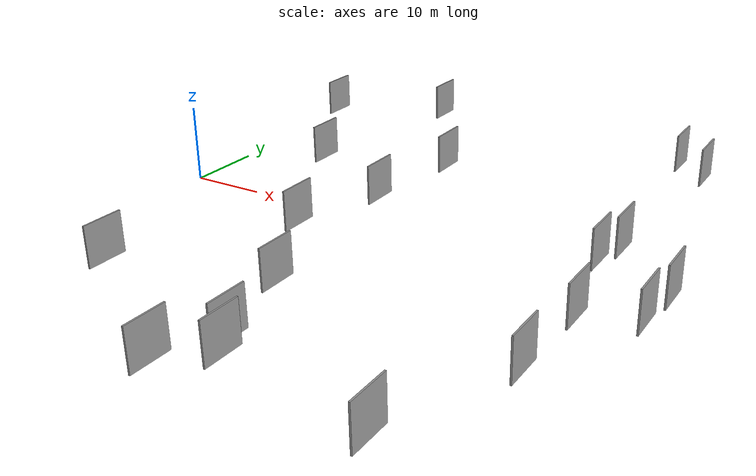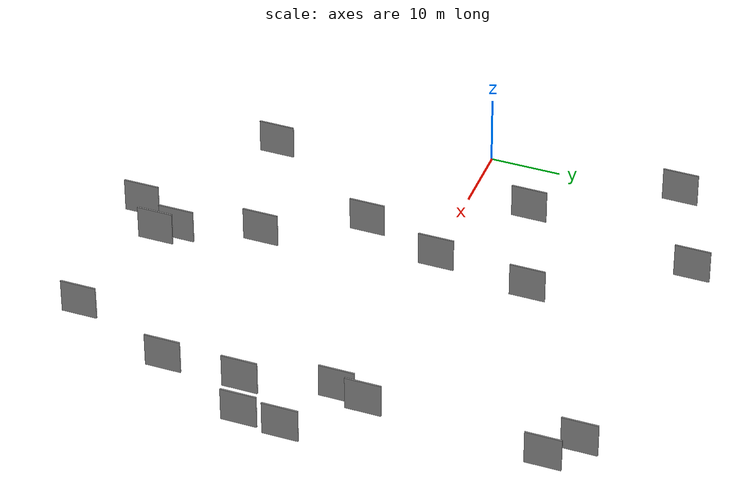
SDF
<sdf version="1.6">
 <world name="default">
  <scene>
   <sky><clouds><speed>12</speed></clouds></sky>
   <ambient>0.4 0.4 0.4 1</ambient>
   <background>0.7 0.7 0.7 1</background>
   <shadows>1</shadows>
  </scene>
  <gravity>0 0 -9.8066</gravity>
  <magnetic_field>6e-06 2.3e-05 -4.2e-05</magnetic_field>
  <physics default="0" name="default_physics" type="ode">
   <ode>
    <solver>
     <type>quick</type>
     <iters>10</iters>
     <sor>1.0</sor>
     <use_dynamic_moi_rescaling>0</use_dynamic_moi_rescaling>
    </solver>
    <constraints>
     <cfm>0</cfm>
     <erp>0.2</erp>
     <contact_max_correcting_vel>100</contact_max_correcting_vel>
     <contact_surface_layer>0.001</contact_surface_layer>
    </constraints>
   </ode>
   <max_step_size>0.004</max_step_size>
   <real_time_factor>1</real_time_factor>
   <real_time_update_rate>250</real_time_update_rate>
  </physics>
  <light name="sun" type="directional">
   <pose>0 0 10 0 0 0</pose>
   <diffuse>0.8 0.8 0.8 1</diffuse>
   <specular>0.2 0.2 0.2 1</specular>
   <attenuation>
    <range>1000</range>
    <constant>0.9</constant>
    <linear>0.01</linear>
    <quadratic>0.001</quadratic>
   </attenuation>
   <direction>-0.5 0.1 -0.9</direction>
  </light>
  <model name="grey_wall_1">
   <static>1</static>
   <pose>36.3104 -35.7027 2.5 0.000000 0.000000 1.570796</pose>
   <link name="link">
    <pose>0 0 2.50 0 0 0</pose>
    <collision name="collision"><geometry><box><size>5.00 0.2 5.00</size></box></geometry></collision>
    <visual name="visual">
     <cast_shadows>0</cast_shadows>
     <geometry><box><size>5.00 0.2 5.00</size></box></geometry>
     <material>
      <script>
       <uri>model://grey_wall/materials/scripts</uri>
       <uri>model://grey_wall/materials/textures</uri>
       <name>vrc/grey_wall</name>
      </script>
     </material>
    </visual>
   </link>
  </model>
  <model name="grey_wall_2">
   <static>1</static>
   <pose>61.2040 -13.2495 2.5 0.000000 0.000000 1.570796</pose>
   <link name="link">
    <pose>0 0 2.50 0 0 0</pose>
    <collision name="collision"><geometry><box><size>5.00 0.2 5.00</size></box></geometry></collision>
    <visual name="visual">
     <cast_shadows>0</cast_shadows>
     <geometry><box><size>5.00 0.2 5.00</size></box></geometry>
     <material>
      <script>
       <uri>model://grey_wall/materials/scripts</uri>
       <uri>model://grey_wall/materials/textures</uri>
       <name>vrc/grey_wall</name>
      </script>
     </material>
    </visual>
   </link>
  </model>
  <model name="grey_wall_3">
   <static>1</static>
   <pose>31.3674 -39.7693 2.5 0.000000 0.000000 1.570796</pose>
   <link name="link">
    <pose>0 0 2.50 0 0 0</pose>
    <collision name="collision"><geometry><box><size>5.00 0.2 5.00</size></box></geometry></collision>
    <visual name="visual">
     <cast_shadows>0</cast_shadows>
     <geometry><box><size>5.00 0.2 5.00</size></box></geometry>
     <material>
      <script>
       <uri>model://grey_wall/materials/scripts</uri>
       <uri>model://grey_wall/materials/textures</uri>
       <name>vrc/grey_wall</name>
      </script>
     </material>
    </visual>
   </link>
  </model>
  <model name="grey_wall_4">
   <static>1</static>
   <pose>30.4552 15.5134 2.5 0.000000 0.000000 1.570796</pose>
   <link name="link">
    <pose>0 0 2.50 0 0 0</pose>
    <collision name="collision"><geometry><box><size>5.00 0.2 5.00</size></box></geometry></collision>
    <visual name="visual">
     <cast_shadows>0</cast_shadows>
     <geometry><box><size>5.00 0.2 5.00</size></box></geometry>
     <material>
      <script>
       <uri>model://grey_wall/materials/scripts</uri>
       <uri>model://grey_wall/materials/textures</uri>
       <name>vrc/grey_wall</name>
      </script>
     </material>
    </visual>
   </link>
  </model>
  <model name="grey_wall_5">
   <static>1</static>
   <pose>31.6495 -22.2131 2.5 0.000000 0.000000 1.570796</pose>
   <link name="link">
    <pose>0 0 2.50 0 0 0</pose>
    <collision name="collision"><geometry><box><size>5.00 0.2 5.00</size></box></geometry></collision>
    <visual name="visual">
     <cast_shadows>0</cast_shadows>
     <geometry><box><size>5.00 0.2 5.00</size></box></geometry>
     <material>
      <script>
       <uri>model://grey_wall/materials/scripts</uri>
       <uri>model://grey_wall/materials/textures</uri>
       <name>vrc/grey_wall</name>
      </script>
     </material>
    </visual>
   </link>
  </model>
  <model name="grey_wall_6">
   <static>1</static>
   <pose>61.6665 28.2213 2.5 0.000000 0.000000 1.570796</pose>
   <link name="link">
    <pose>0 0 2.50 0 0 0</pose>
    <collision name="collision"><geometry><box><size>5.00 0.2 5.00</size></box></geometry></collision>
    <visual name="visual">
     <cast_shadows>0</cast_shadows>
     <geometry><box><size>5.00 0.2 5.00</size></box></geometry>
     <material>
      <script>
       <uri>model://grey_wall/materials/scripts</uri>
       <uri>model://grey_wall/materials/textures</uri>
       <name>vrc/grey_wall</name>
      </script>
     </material>
    </visual>
   </link>
  </model>
  <model name="grey_wall_7">
   <static>1</static>
   <pose>24.5263 -9.4457 2.5 0.000000 0.000000 1.570796</pose>
   <link name="link">
    <pose>0 0 2.50 0 0 0</pose>
    <collision name="collision"><geometry><box><size>5.00 0.2 5.00</size></box></geometry></collision>
    <visual name="visual">
     <cast_shadows>0</cast_shadows>
     <geometry><box><size>5.00 0.2 5.00</size></box></geometry>
     <material>
      <script>
       <uri>model://grey_wall/materials/scripts</uri>
       <uri>model://grey_wall/materials/textures</uri>
       <name>vrc/grey_wall</name>
      </script>
     </material>
    </visual>
   </link>
  </model>
  <model name="grey_wall_8">
   <static>1</static>
   <pose>18.8282 34.8507 2.5 0.000000 0.000000 1.570796</pose>
   <link name="link">
    <pose>0 0 2.50 0 0 0</pose>
    <collision name="collision"><geometry><box><size>5.00 0.2 5.00</size></box></geometry></collision>
    <visual name="visual">
     <cast_shadows>0</cast_shadows>
     <geometry><box><size>5.00 0.2 5.00</size></box></geometry>
     <material>
      <script>
       <uri>model://grey_wall/materials/scripts</uri>
       <uri>model://grey_wall/materials/textures</uri>
       <name>vrc/grey_wall</name>
      </script>
     </material>
    </visual>
   </link>
  </model>
  <model name="grey_wall_9">
   <static>1</static>
   <pose>14.0759 10.2100 2.5 0.000000 0.000000 1.570796</pose>
   <link name="link">
    <pose>0 0 2.50 0 0 0</pose>
    <collision name="collision"><geometry><box><size>5.00 0.2 5.00</size></box></geometry></collision>
    <visual name="visual">
     <cast_shadows>0</cast_shadows>
     <geometry><box><size>5.00 0.2 5.00</size></box></geometry>
     <material>
      <script>
       <uri>model://grey_wall/materials/scripts</uri>
       <uri>model://grey_wall/materials/textures</uri>
       <name>vrc/grey_wall</name>
      </script>
     </material>
    </visual>
   </link>
  </model>
  <model name="grey_wall_10">
   <static>1</static>
   <pose>12.3881 -27.4805 2.5 0.000000 0.000000 1.570796</pose>
   <link name="link">
    <pose>0 0 2.50 0 0 0</pose>
    <collision name="collision"><geometry><box><size>5.00 0.2 5.00</size></box></geometry></collision>
    <visual name="visual">
     <cast_shadows>0</cast_shadows>
     <geometry><box><size>5.00 0.2 5.00</size></box></geometry>
     <material>
      <script>
       <uri>model://grey_wall/materials/scripts</uri>
       <uri>model://grey_wall/materials/textures</uri>
       <name>vrc/grey_wall</name>
      </script>
     </material>
    </visual>
   </link>
  </model>
  <model name="grey_wall_11">
   <static>1</static>
   <pose>60.7731 -24.2000 2.5 0.000000 0.000000 1.570796</pose>
   <link name="link">
    <pose>0 0 2.50 0 0 0</pose>
    <collision name="collision"><geometry><box><size>5.00 0.2 5.00</size></box></geometry></collision>
    <visual name="visual">
     <cast_shadows>0</cast_shadows>
     <geometry><box><size>5.00 0.2 5.00</size></box></geometry>
     <material>
      <script>
       <uri>model://grey_wall/materials/scripts</uri>
       <uri>model://grey_wall/materials/textures</uri>
       <name>vrc/grey_wall</name>
      </script>
     </material>
    </visual>
   </link>
  </model>
  <model name="grey_wall_12">
   <static>1</static>
   <pose>67.3725 -10.8613 2.5 0.000000 0.000000 1.570796</pose>
   <link name="link">
    <pose>0 0 2.50 0 0 0</pose>
    <collision name="collision"><geometry><box><size>5.00 0.2 5.00</size></box></geometry></collision>
    <visual name="visual">
     <cast_shadows>0</cast_shadows>
     <geometry><box><size>5.00 0.2 5.00</size></box></geometry>
     <material>
      <script>
       <uri>model://grey_wall/materials/scripts</uri>
       <uri>model://grey_wall/materials/textures</uri>
       <name>vrc/grey_wall</name>
      </script>
     </material>
    </visual>
   </link>
  </model>
  <model name="grey_wall_13">
   <static>1</static>
   <pose>3.3044 28.4544 2.5 0.000000 0.000000 1.570796</pose>
   <link name="link">
    <pose>0 0 2.50 0 0 0</pose>
    <collision name="collision"><geometry><box><size>5.00 0.2 5.00</size></box></geometry></collision>
    <visual name="visual">
     <cast_shadows>0</cast_shadows>
     <geometry><box><size>5.00 0.2 5.00</size></box></geometry>
     <material>
      <script>
       <uri>model://grey_wall/materials/scripts</uri>
       <uri>model://grey_wall/materials/textures</uri>
       <name>vrc/grey_wall</name>
      </script>
     </material>
    </visual>
   </link>
  </model>
  <model name="grey_wall_14">
   <static>1</static>
   <pose>59.8037 3.2569 2.5 0.000000 0.000000 1.570796</pose>
   <link name="link">
    <pose>0 0 2.50 0 0 0</pose>
    <collision name="collision"><geometry><box><size>5.00 0.2 5.00</size></box></geometry></collision>
    <visual name="visual">
     <cast_shadows>0</cast_shadows>
     <geometry><box><size>5.00 0.2 5.00</size></box></geometry>
     <material>
      <script>
       <uri>model://grey_wall/materials/scripts</uri>
       <uri>model://grey_wall/materials/textures</uri>
       <name>vrc/grey_wall</name>
      </script>
     </material>
    </visual>
   </link>
  </model>
  <model name="grey_wall_15">
   <static>1</static>
   <pose>34.8770 -33.2016 2.5 0.000000 0.000000 1.570796</pose>
   <link name="link">
    <pose>0 0 2.50 0 0 0</pose>
    <collision name="collision"><geometry><box><size>5.00 0.2 5.00</size></box></geometry></collision>
    <visual name="visual">
     <cast_shadows>0</cast_shadows>
     <geometry><box><size>5.00 0.2 5.00</size></box></geometry>
     <material>
      <script>
       <uri>model://grey_wall/materials/scripts</uri>
       <uri>model://grey_wall/materials/textures</uri>
       <name>vrc/grey_wall</name>
      </script>
     </material>
    </visual>
   </link>
  </model>
  <model name="grey_wall_16">
   <static>1</static>
   <pose>28.4363 1.8822 2.5 0.000000 0.000000 1.570796</pose>
   <link name="link">
    <pose>0 0 2.50 0 0 0</pose>
    <collision name="collision"><geometry><box><size>5.00 0.2 5.00</size></box></geometry></collision>
    <visual name="visual">
     <cast_shadows>0</cast_shadows>
     <geometry><box><size>5.00 0.2 5.00</size></box></geometry>
     <material>
      <script>
       <uri>model://grey_wall/materials/scripts</uri>
       <uri>model://grey_wall/materials/textures</uri>
       <name>vrc/grey_wall</name>
      </script>
     </material>
    </visual>
   </link>
  </model>
  <model name="grey_wall_17">
   <static>1</static>
   <pose>68.0469 -4.9070 2.5 0.000000 0.000000 1.570796</pose>
   <link name="link">
    <pose>0 0 2.50 0 0 0</pose>
    <collision name="collision"><geometry><box><size>5.00 0.2 5.00</size></box></geometry></collision>
    <visual name="visual">
     <cast_shadows>0</cast_shadows>
     <geometry><box><size>5.00 0.2 5.00</size></box></geometry>
     <material>
      <script>
       <uri>model://grey_wall/materials/scripts</uri>
       <uri>model://grey_wall/materials/textures</uri>
       <name>vrc/grey_wall</name>
      </script>
     </material>
    </visual>
   </link>
  </model>
  <model name="grey_wall_18">
   <static>1</static>
   <pose>57.4006 31.6871 2.5 0.000000 0.000000 1.570796</pose>
   <link name="link">
    <pose>0 0 2.50 0 0 0</pose>
    <collision name="collision"><geometry><box><size>5.00 0.2 5.00</size></box></geometry></collision>
    <visual name="visual">
     <cast_shadows>0</cast_shadows>
     <geometry><box><size>5.00 0.2 5.00</size></box></geometry>
     <material>
      <script>
       <uri>model://grey_wall/materials/scripts</uri>
       <uri>model://grey_wall/materials/textures</uri>
       <name>vrc/grey_wall</name>
      </script>
     </material>
    </visual>
   </link>
  </model>
  <model name="grey_wall_19">
   <static>1</static>
   <pose>58.6123 -0.7966 2.5 0.000000 0.000000 1.570796</pose>
   <link name="link">
    <pose>0 0 2.50 0 0 0</pose>
    <collision name="collision"><geometry><box><size>5.00 0.2 5.00</size></box></geometry></collision>
    <visual name="visual">
     <cast_shadows>0</cast_shadows>
     <geometry><box><size>5.00 0.2 5.00</size></box></geometry>
     <material>
      <script>
       <uri>model://grey_wall/materials/scripts</uri>
       <uri>model://grey_wall/materials/textures</uri>
       <name>vrc/grey_wall</name>
      </script>
     </material>
    </visual>
   </link>
  </model>
  <model name="grey_wall_20">
   <static>1</static>
   <pose>54.4174 -38.9367 2.5 0.000000 0.000000 1.570796</pose>
   <link name="link">
    <pose>0 0 2.50 0 0 0</pose>
    <collision name="collision"><geometry><box><size>5.00 0.2 5.00</size></box></geometry></collision>
    <visual name="visual">
     <cast_shadows>0</cast_shadows>
     <geometry><box><size>5.00 0.2 5.00</size></box></geometry>
     <material>
      <script>
       <uri>model://grey_wall/materials/scripts</uri>
       <uri>model://grey_wall/materials/textures</uri>
       <name>vrc/grey_wall</name>
      </script>
     </material>
    </visual>
   </link>
  </model>
 </world>
</sdf>
